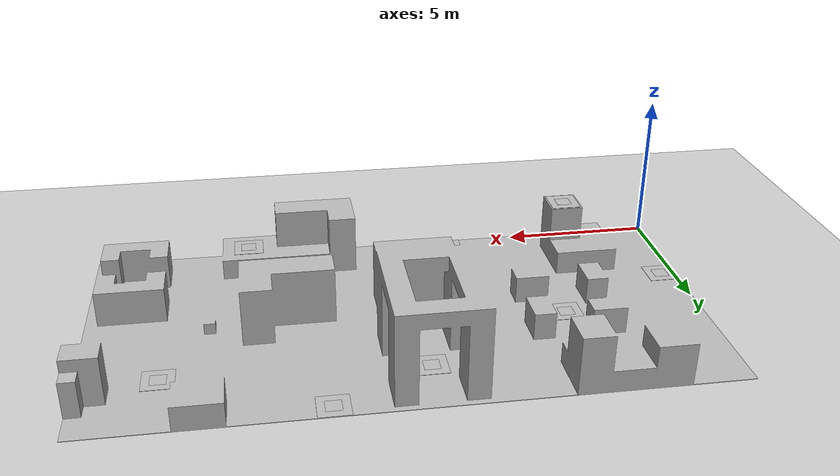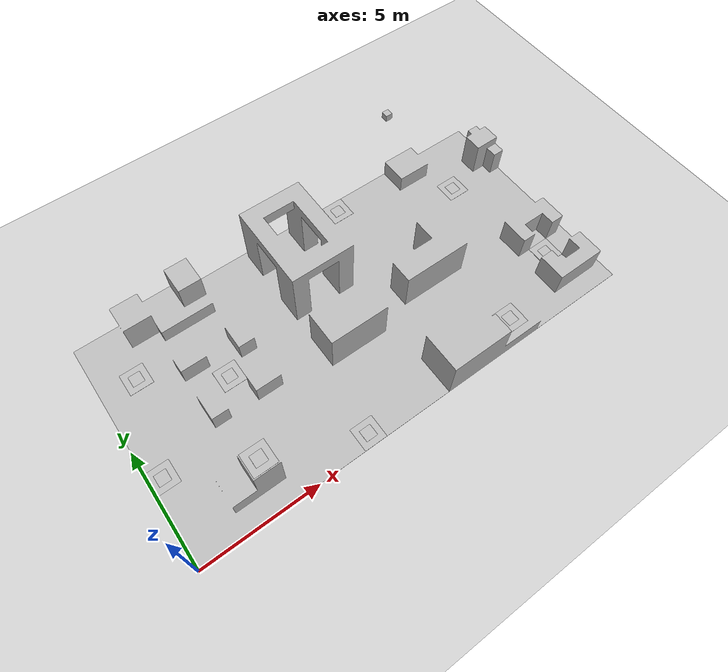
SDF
<?xml version="1.0" ?>
<sdf version="1.5">
  <world name="campo_gara">
	<scene>
		<ambient>0.0 0.0 0.0 1.0</ambient>
		<shadows>0</shadows>
	</scene>
    <include>
      <uri>model://ground_plane</uri>
    </include>
    <include>
      <uri>model://sun</uri>
    </include>
    <include>
      <uri>model://campo_gara</uri>
    </include>

    <physics name='default_physics' default='0' type='ode'>
      <gravity>0 0 -9.8066</gravity>
      <ode>
        <solver>
          <type>quick</type>
          <iters>10</iters>
          <sor>1.3</sor>
          <use_dynamic_moi_rescaling>0</use_dynamic_moi_rescaling>
        </solver>
        <constraints>
          <cfm>0</cfm>
          <erp>0.2</erp>
          <contact_max_correcting_vel>100</contact_max_correcting_vel>
          <contact_surface_layer>0.001</contact_surface_layer>
        </constraints>
      </ode>
      <max_step_size>0.004</max_step_size>
      <real_time_factor>1</real_time_factor>
      <real_time_update_rate>250</real_time_update_rate>
      <magnetic_field>6.0e-6 2.3e-5 -4.2e-5</magnetic_field>
    </physics>

  </world>
</sdf>

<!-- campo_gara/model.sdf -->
<sdf version="1.5">
	<model name="campo_gara">
		<static>true</static>
		<!-- Obstacles map -->
		<link name="ground">
			<pose>0 0 0.05 0 0 0</pose>
			<collision name="ground_collision">
				<geometry>
			  		<mesh>
						<uri>model://campo_gara/meshes/campo_gara.stl</uri>
			  		</mesh>
				</geometry>
			</collision>
			<visual name="ground_visual">
				<geometry>
			  		<mesh>
						<uri>model://campo_gara/meshes/campo_gara.stl</uri>
			  		</mesh>
				</geometry>
				<cast_shadows>false</cast_shadows>
			</visual>
		</link>

		<!-- Takeoff/landing pitches -->
		<!-- Area 1 -->
		<joint name="ground_p1_joint" type="fixed">
			<parent>ground</parent>
			<child>p1</child>
		</joint>

		<link name="p1">
    		<pose>0.5 3.5 0.061 0 0 0</pose>
			<visual name="p1_visual">
				<geometry>
					<box> <size> 1.0 1.0 0.001 </size> </box>
				</geometry>
				<material>
					<script>
						<uri>model://campo_gara/materials/scripts</uri>
						<uri>model://campo_gara/materials/textures</uri>
						<name>campo_gara/aruco_background</name>
					</script>
				</material>
				<cast_shadows>false</cast_shadows>
			</visual>
		</link>

		<joint name="p1_aruco1_joint" type="fixed">
			<parent>p1</parent>
			<child>aruco1</child>
		</joint>

		<link name="aruco1">
    		<pose>0.5 3.5 0.062 0 0 0.0</pose>
			<visual name="aruco1_visual">
				<geometry>
					<box> <size> 0.5 0.5 0.001 </size> </box>
				</geometry>
				<material>
					<script>
						<uri>model://campo_gara/materials/scripts</uri>
						<uri>model://campo_gara/materials/textures</uri>
						<name>campo_gara/area1</name>
					</script>
				</material>
				<cast_shadows>false</cast_shadows>
			</visual>
		</link>

		<!-- Area 2 -->
		<joint name="ground_p2_joint" type="fixed">
			<parent>ground</parent>
			<child>p2</child>
		</joint>

		<link name="p2">
    		<pose>18.5 2.5 0.063 0 0 0</pose>
			<visual name="p2_visual">
				<geometry>
					<box> <size> 1.0 1.0 0.001 </size> </box>
				</geometry>
				<material>
					<script>
						<uri>model://campo_gara/materials/scripts</uri>
						<uri>model://campo_gara/materials/textures</uri>
						<name>campo_gara/aruco_background</name>
					</script>
				</material>
				<cast_shadows>false</cast_shadows>
			</visual>
		</link>

		<joint name="p2_aruco2_joint" type="fixed">
			<parent>p2</parent>
			<child>aruco2</child>
		</joint>

		<link name="aruco2">
    		<pose>18.5 2.5 0.064 0 0 0</pose>
			<visual name="aruco2_visual">
				<geometry>
					<box> <size> 0.5 0.5 0.001 </size> </box>
				</geometry>
				<material>
					<script>
						<uri>model://campo_gara/materials/scripts</uri>
						<uri>model://campo_gara/materials/textures</uri>
						<name>campo_gara/area2</name>
					</script>
				</material>
				<cast_shadows>false</cast_shadows>
			</visual>
		</link>

		<!-- Area 3 -->
		<joint name="ground_p3_joint" type="fixed">
			<parent>ground</parent>
			<child>p3</child>
		</joint>

		<link name="p3">
    		<pose>7.5 0.5 0.061 0 0 0</pose>
			<visual name="p3_visual">
				<geometry>
					<box> <size> 1.0 1.0 0.001 </size> </box>
				</geometry>
				<material>
					<script>
						<uri>model://campo_gara/materials/scripts</uri>
						<uri>model://campo_gara/materials/textures</uri>
						<name>campo_gara/aruco_background</name>
					</script>
				</material>
				<cast_shadows>false</cast_shadows>
			</visual>
		</link>

		<joint name="p3_aruco3_joint" type="fixed">
			<parent>p3</parent>
			<child>aruco3</child>
		</joint>

		<link name="aruco3">
    		<pose>7.5 0.5 0.062 0 0 0</pose>
			<visual name="aruco3_visual">
				<geometry>
					<box> <size> 0.5 0.5 0.001 </size> </box>
				</geometry>
				<material>
					<script>
						<uri>model://campo_gara/materials/scripts</uri>
						<uri>model://campo_gara/materials/textures</uri>
						<name>campo_gara/area3</name>
					</script>
				</material>
				<cast_shadows>false</cast_shadows>
			</visual>
		</link>

		<!-- Area 4 -->
		<joint name="ground_p4_joint" type="fixed">
			<parent>ground</parent>
			<child>p4</child>
		</joint>

		<link name="p4">
    		<pose>1.5 7.5 0.061 0 0 0</pose>
			<visual name="p4_visual">
				<geometry>
					<box> <size> 1.0 1.0 0.001 </size> </box>
				</geometry>
				<material>
					<script>
						<uri>model://campo_gara/materials/scripts</uri>
						<uri>model://campo_gara/materials/textures</uri>
						<name>campo_gara/aruco_background</name>
					</script>
				</material>
				<cast_shadows>false</cast_shadows>
			</visual>
		</link>

		<joint name="p4_aruco4_joint" type="fixed">
			<parent>p4</parent>
			<child>aruco4</child>
		</joint>

		<link name="aruco4">
    		<pose>1.5 7.5 0.062 0 0 0</pose>
			<visual name="aruco4_visual">
				<geometry>
					<box> <size> 0.5 0.5 0.001 </size> </box>
				</geometry>
				<material>
					<script>
						<uri>model://campo_gara/materials/scripts</uri>
						<uri>model://campo_gara/materials/textures</uri>
						<name>campo_gara/area4</name>
					</script>
				</material>
				<cast_shadows>false</cast_shadows>
			</visual>
		</link>

		<!-- Area 5 -->
		<joint name="ground_p5_joint" type="fixed">
			<parent>ground</parent>
			<child>p5</child>
		</joint>

		<link name="p5">
    		<pose>4.5 5.5 0.061 0 0 0</pose>
			<visual name="p5_visual">
				<geometry>
					<box> <size> 1.0 1.0 0.001 </size> </box>
				</geometry>
				<material>
					<script>
						<uri>model://campo_gara/materials/scripts</uri>
						<uri>model://campo_gara/materials/textures</uri>
						<name>campo_gara/aruco_background</name>
					</script>
				</material>
				<cast_shadows>false</cast_shadows>
			</visual>
		</link>

		<joint name="p5_aruco5_joint" type="fixed">
			<parent>p5</parent>
			<child>aruco5</child>
		</joint>

		<link name="aruco5">
    		<pose>4.5 5.5 0.062 0 0 0</pose>
			<visual name="aruco5_visual">
				<geometry>
					<box> <size> 0.5 0.5 0.001 </size> </box>
				</geometry>
				<material>
					<script>
						<uri>model://campo_gara/materials/scripts</uri>
						<uri>model://campo_gara/materials/textures</uri>
						<name>campo_gara/area5</name>
					</script>
				</material>
				<cast_shadows>false</cast_shadows>
			</visual>
		</link>

		<!-- Area 6 -->
		<joint name="ground_p6_joint" type="fixed">
			<parent>ground</parent>
			<child>p6</child>
		</joint>

		<link name="p6">
    		<pose>17.5 7.5 0.063 0 0 0</pose>
			<visual name="p6_visual">
				<geometry>
					<box> <size> 1.0 1.0 0.001 </size> </box>
				</geometry>
				<material>
					<script>
						<uri>model://campo_gara/materials/scripts</uri>
						<uri>model://campo_gara/materials/textures</uri>
						<name>campo_gara/aruco_background</name>
					</script>
				</material>
				<cast_shadows>false</cast_shadows>
			</visual>
		</link>

		<joint name="p6_aruco6_joint" type="fixed">
			<parent>p6</parent>
			<child>aruco6</child>
		</joint>

		<link name="aruco6">
    		<pose>17.5 7.5 0.064 0 0 0</pose>
			<visual name="aruco6_visual">
				<geometry>
					<box> <size> 0.5 0.5 0.001 </size> </box>
				</geometry>
				<material>
					<script>
						<uri>model://campo_gara/materials/scripts</uri>
						<uri>model://campo_gara/materials/textures</uri>
						<name>campo_gara/area6</name>
					</script>
				</material>
				<cast_shadows>false</cast_shadows>
			</visual>
		</link>

		<!-- Area 7 -->
		<joint name="ground_p7_joint" type="fixed">
			<parent>ground</parent>
			<child>p7</child>
		</joint>

		<link name="p7">
    		<pose>14.695 0.805 0.763 0 0 0</pose>
			<visual name="p7_visual">
				<geometry>
					<box> <size> 1.0 1.0 0.001 </size> </box>
				</geometry>
				<material>
					<script>
						<uri>model://campo_gara/materials/scripts</uri>
						<uri>model://campo_gara/materials/textures</uri>
						<name>campo_gara/aruco_background</name>
					</script>
				</material>
				<cast_shadows>false</cast_shadows>
			</visual>
		</link>

		<joint name="p7_aruco7_joint" type="fixed">
			<parent>p7</parent>
			<child>aruco7</child>
		</joint>

		<link name="aruco7">
    		<pose>14.695 0.805 0.765 0 0 0</pose>
			<visual name="aruco7_visual">
				<geometry>
					<box> <size> 0.5 0.5 0.001 </size> </box>
				</geometry>
				<material>
					<script>
						<uri>model://campo_gara/materials/scripts</uri>
						<uri>model://campo_gara/materials/textures</uri>
						<name>campo_gara/area7</name>
					</script>
				</material>
				<cast_shadows>false</cast_shadows>
			</visual>
		</link>

		<!-- Area 8 -->
		<joint name="ground_p8_joint" type="fixed">
			<parent>ground</parent>
			<child>p8</child>
		</joint>

		<link name="p8">
    		<pose>9.4 7.9 0.062 0 0 0</pose>
			<visual name="p8_visual">
				<geometry>
					<box> <size> 1.0 1.0 0.001 </size> </box>
				</geometry>
				<material>
					<script>
						<uri>model://campo_gara/materials/scripts</uri>
						<uri>model://campo_gara/materials/textures</uri>
						<name>campo_gara/aruco_background</name>
					</script>
				</material>
				<cast_shadows>false</cast_shadows>
			</visual>
		</link>

		<joint name="p8_aruco8_joint" type="fixed">
			<parent>p8</parent>
			<child>aruco8</child>
		</joint>

		<link name="aruco8">
    		<pose>9.4 7.9 0.064 0 0 0</pose>
			<visual name="aruco8_visual">
				<geometry>
					<box> <size> 0.5 0.5 0.001 </size> </box>
				</geometry>
				<material>
					<script>
						<uri>model://campo_gara/materials/scripts</uri>
						<uri>model://campo_gara/materials/textures</uri>
						<name>campo_gara/area8</name>
					</script>
				</material>
				<cast_shadows>false</cast_shadows>
			</visual>
		</link>

		<!-- Area 9 -->
		<joint name="ground_p9_joint" type="fixed">
			<parent>ground</parent>
			<child>p9</child>
		</joint>

		<link name="p9">
    		<pose>12.5 9.5 0.062 0 0 0</pose>
			<inertial>
			 	<inertia>
					<ixx>0.1</ixx>
					<ixy>0</ixy>
					<ixz>0</ixz>
					<iyy>0.1</iyy>
					<iyz>0</iyz>
					<izz>0.1</izz>
				</inertia>
			</inertial>
			<visual name="p9_visual">
				<geometry>
					<box> <size> 1.0 1.0 0.001 </size> </box>
				</geometry>
				<material>
					<script>
						<uri>model://campo_gara/materials/scripts</uri>
						<uri>model://campo_gara/materials/textures</uri>
						<name>campo_gara/aruco_background</name>
					</script>
				</material>
				<cast_shadows>false</cast_shadows>
			</visual>
		</link>

		<joint name="p9_aruco9_joint" type="fixed">
			<parent>p9</parent>
			<child>aruco9</child>
		</joint>

		<link name="aruco9">
    		<pose>12.5 9.5 0.064 0 0 0</pose>
			<visual name="aruco9_visual">
				<geometry>
					<box> <size> 0.5 0.5 0.001 </size> </box>
				</geometry>
				<material>
					<script>
						<uri>model://campo_gara/materials/scripts</uri>
						<uri>model://campo_gara/materials/textures</uri>
						<name>campo_gara/area9</name>
					</script>
				</material>
				<cast_shadows>false</cast_shadows>
			</visual>
		</link>

		<!-- Area 10 -->
		<joint name="ground_p10_joint" type="fixed">
			<parent>ground</parent>
			<child>p10</child>
		</joint>

		<link name="p10">
    		<pose>3.55 1.445 2.062 0 0 0</pose>
			<visual name="p10_visual">
				<geometry>
					<box> <size> 1.0 1.0 0.001 </size> </box>
				</geometry>
				<material>
					<script>
						<uri>model://campo_gara/materials/scripts</uri>
						<uri>model://campo_gara/materials/textures</uri>
						<name>campo_gara/aruco_background</name>
					</script>
				</material>
				<cast_shadows>false</cast_shadows>
			</visual>
		</link>

		<joint name="p10_aruco10_joint" type="fixed">
			<parent>p10</parent>
			<child>aruco10</child>
		</joint>

		<link name="aruco10">
    		<pose>3.55 1.445 2.064 0 0 0</pose>
			<visual name="aruco10_visual">
				<geometry>
					<box> <size> 0.5 0.5 0.001 </size> </box>
				</geometry>
				<material>
					<script>
						<uri>model://campo_gara/materials/scripts</uri>
						<uri>model://campo_gara/materials/textures</uri>
						<name>campo_gara/area10</name>
					</script>
				</material>
				<cast_shadows>false</cast_shadows>
			</visual>
		</link>

  </model>
</sdf>
